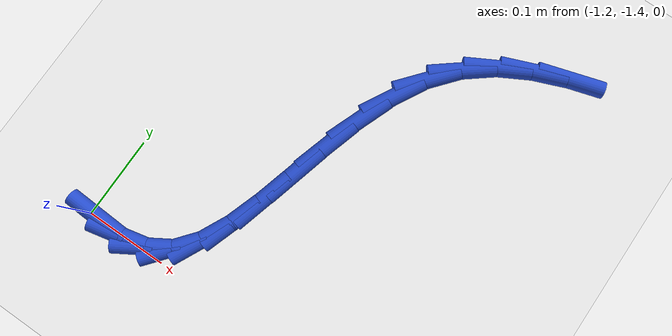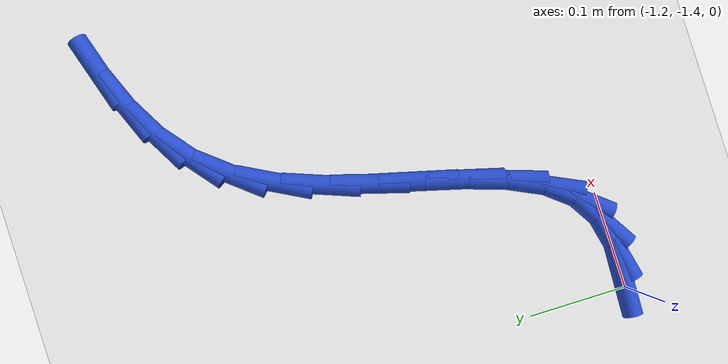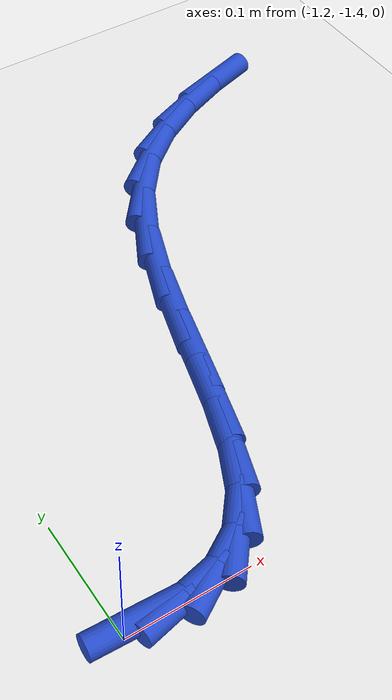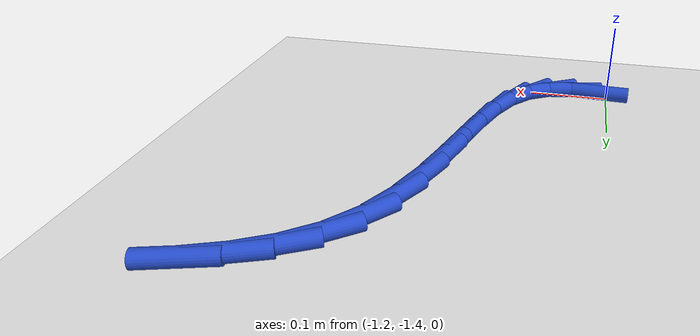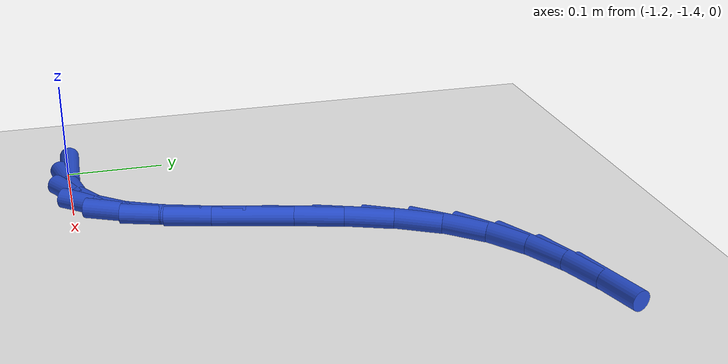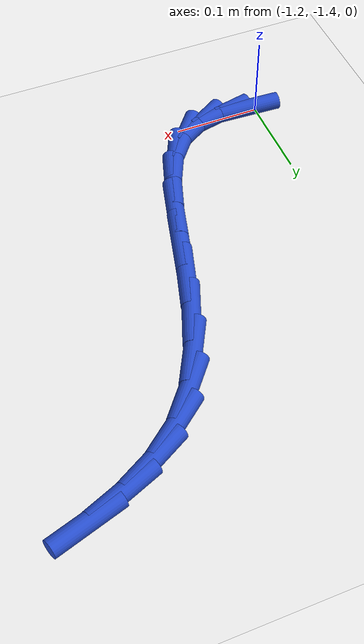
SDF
<sdf version="1.6">
 <world name="default">
  <model name="ground_plane">
   <static>1</static>
   <link name="link">
    <collision name="collision">
     <geometry><plane><normal>0 0 1</normal><size>100 100</size></plane></geometry>
     <surface><friction><ode><mu>100</mu><mu2>50</mu2></ode></friction></surface>
    </collision>
    <visual name="visual">
     <cast_shadows>0</cast_shadows>
     <geometry><plane><normal>0 0 1</normal><size>100 100</size></plane></geometry>
     <material>
      <script><uri>file://media/materials/scripts/gazebo.material</uri><name>Gazebo/WhiteGlow</name></script>
     </material>
    </visual>
   </link>
  </model>
  <model name="line">
   <link name="link_144">
    <pose>-1.1872415574179047 -1.3979767738019815 0.01 0 1.57 -0.04588380426478071</pose>
    <collision name="collision">
     <geometry><cylinder><radius>0.01</radius><length>0.08</length></cylinder></geometry>
    </collision>
    <visual name="visual">
     <material>
      <script><name>Gazebo/Blue</name><uri>file://media/materials/scripts/gazebo.material</uri></script>
     </material>
     <geometry><cylinder><radius>0.01</radius><length>0.08</length></cylinder></geometry>
    </visual>
   </link>
   <link name="link_145">
    <pose>-1.1531022985928154 -1.3995443130851797 0.01 0 1.57 0.2148509591762477</pose>
    <collision name="collision">
     <geometry><cylinder><radius>0.01</radius><length>0.08</length></cylinder></geometry>
    </collision>
    <visual name="visual">
     <material>
      <script><name>Gazebo/Blue</name><uri>file://media/materials/scripts/gazebo.material</uri></script>
     </material>
     <geometry><cylinder><radius>0.01</radius><length>0.08</length></cylinder></geometry>
    </visual>
   </link>
   <link name="link_146">
    <pose>-1.122876565275637 -1.3929484816718263 0.01 0 1.57 0.5464078041824116</pose>
    <collision name="collision">
     <geometry><cylinder><radius>0.01</radius><length>0.08</length></cylinder></geometry>
    </collision>
    <visual name="visual">
     <material>
      <script><name>Gazebo/Blue</name><uri>file://media/materials/scripts/gazebo.material</uri></script>
     </material>
     <geometry><cylinder><radius>0.01</radius><length>0.08</length></cylinder></geometry>
    </visual>
   </link>
   <link name="link_147">
    <pose>-1.0971259649567702 -1.377287647443103 0.01 0 1.57 0.8862014245659278</pose>
    <collision name="collision">
     <geometry><cylinder><radius>0.01</radius><length>0.08</length></cylinder></geometry>
    </collision>
    <visual name="visual">
     <material>
      <script><name>Gazebo/Blue</name><uri>file://media/materials/scripts/gazebo.material</uri></script>
     </material>
     <geometry><cylinder><radius>0.01</radius><length>0.08</length></cylinder></geometry>
    </visual>
   </link>
   <link name="link_148">
    <pose>-1.0763221630388118 -1.3518018319326048 0.01 0 1.57 1.1217602869685055</pose>
    <collision name="collision">
     <geometry><cylinder><radius>0.01</radius><length>0.08</length></cylinder></geometry>
    </collision>
    <visual name="visual">
     <material>
      <script><name>Gazebo/Blue</name><uri>file://media/materials/scripts/gazebo.material</uri></script>
     </material>
     <geometry><cylinder><radius>0.01</radius><length>0.08</length></cylinder></geometry>
    </visual>
   </link>
   <link name="link_149">
    <pose>-1.0598020509263657 -1.3175182609228449 0.01 0 1.57 1.2475887479076877</pose>
    <collision name="collision">
     <geometry><cylinder><radius>0.01</radius><length>0.08</length></cylinder></geometry>
    </collision>
    <visual name="visual">
     <material>
      <script><name>Gazebo/Blue</name><uri>file://media/materials/scripts/gazebo.material</uri></script>
     </material>
     <geometry><cylinder><radius>0.01</radius><length>0.08</length></cylinder></geometry>
    </visual>
   </link>
   <link name="link_150">
    <pose>-1.0461256996784647 -1.2766876078825844 0.01 0 1.57 1.3048178855172592</pose>
    <collision name="collision">
     <geometry><cylinder><radius>0.01</radius><length>0.08</length></cylinder></geometry>
    </collision>
    <visual name="visual">
     <material>
      <script><name>Gazebo/Blue</name><uri>file://media/materials/scripts/gazebo.material</uri></script>
     </material>
     <geometry><cylinder><radius>0.01</radius><length>0.08</length></cylinder></geometry>
    </visual>
   </link>
   <link name="link_151">
    <pose>-1.0338380679747203 -1.2315843474152228 0.01 0 1.57 1.314289851538005</pose>
    <collision name="collision">
     <geometry><cylinder><radius>0.01</radius><length>0.08</length></cylinder></geometry>
    </collision>
    <visual name="visual">
     <material>
      <script><name>Gazebo/Blue</name><uri>file://media/materials/scripts/gazebo.material</uri></script>
     </material>
     <geometry><cylinder><radius>0.01</radius><length>0.08</length></cylinder></geometry>
    </visual>
   </link>
   <link name="link_152">
    <pose>-1.0214841144947437 -1.1844829541241608 0.01 0 1.57 1.2827167861028566</pose>
    <collision name="collision">
     <geometry><cylinder><radius>0.01</radius><length>0.08</length></cylinder></geometry>
    </collision>
    <visual name="visual">
     <material>
      <script><name>Gazebo/Blue</name><uri>file://media/materials/scripts/gazebo.material</uri></script>
     </material>
     <geometry><cylinder><radius>0.01</radius><length>0.08</length></cylinder></geometry>
    </visual>
   </link>
   <link name="link_153">
    <pose>-1.0076087979181458 -1.1376579026127969 0.01 0 1.57 1.2071064441551407</pose>
    <collision name="collision">
     <geometry><cylinder><radius>0.01</radius><length>0.08</length></cylinder></geometry>
    </collision>
    <visual name="visual">
     <material>
      <script><name>Gazebo/Blue</name><uri>file://media/materials/scripts/gazebo.material</uri></script>
     </material>
     <geometry><cylinder><radius>0.01</radius><length>0.08</length></cylinder></geometry>
    </visual>
   </link>
   <link name="link_154">
    <pose>-0.9907570769245384 -1.0933836674845312 0.01 0 1.57 1.0760412023821324</pose>
    <collision name="collision">
     <geometry><cylinder><radius>0.01</radius><length>0.08</length></cylinder></geometry>
    </collision>
    <visual name="visual">
     <material>
      <script><name>Gazebo/Blue</name><uri>file://media/materials/scripts/gazebo.material</uri></script>
     </material>
     <geometry><cylinder><radius>0.01</radius><length>0.08</length></cylinder></geometry>
    </visual>
   </link>
   <link name="link_155">
    <pose>-0.969473910193533 -1.0539347233427638 0.01 0 1.57 0.8795466941416823</pose>
    <collision name="collision">
     <geometry><cylinder><radius>0.01</radius><length>0.08</length></cylinder></geometry>
    </collision>
    <visual name="visual">
     <material>
      <script><name>Gazebo/Blue</name><uri>file://media/materials/scripts/gazebo.material</uri></script>
     </material>
     <geometry><cylinder><radius>0.01</radius><length>0.08</length></cylinder></geometry>
    </visual>
   </link>
   <link name="link_156">
    <pose>-0.9424863221404427 -1.02131892479432 0.01 0 1.57 0.6735459623128434</pose>
    <collision name="collision">
     <geometry><cylinder><radius>0.01</radius><length>0.08</length></cylinder></geometry>
    </collision>
    <visual name="visual">
     <material>
      <script><name>Gazebo/Blue</name><uri>file://media/materials/scripts/gazebo.material</uri></script>
     </material>
     <geometry><cylinder><radius>0.01</radius><length>0.08</length></cylinder></geometry>
    </visual>
   </link>
   <link name="link_157">
    <pose>-0.9099934924146512 -0.9953882786037482 0.01 0 1.57 0.5036714964694431</pose>
    <collision name="collision">
     <geometry><cylinder><radius>0.01</radius><length>0.08</length></cylinder></geometry>
    </collision>
    <visual name="visual">
     <material>
      <script><name>Gazebo/Blue</name><uri>file://media/materials/scripts/gazebo.material</uri></script>
     </material>
     <geometry><cylinder><radius>0.01</radius><length>0.08</length></cylinder></geometry>
    </visual>
   </link>
   <link name="link_158">
    <pose>-0.8729074283831906 -0.9749509151416945 0.01 0 1.57 0.3770700580744175</pose>
    <collision name="collision">
     <geometry><cylinder><radius>0.01</radius><length>0.08</length></cylinder></geometry>
    </collision>
    <visual name="visual">
     <material>
      <script><name>Gazebo/Blue</name><uri>file://media/materials/scripts/gazebo.material</uri></script>
     </material>
     <geometry><cylinder><radius>0.01</radius><length>0.08</length></cylinder></geometry>
    </visual>
   </link>
   <link name="link_159">
    <pose>-0.832144805525395 -0.958808128719944 0.01 0 1.57 0.29124942726283787</pose>
    <collision name="collision">
     <geometry><cylinder><radius>0.01</radius><length>0.08</length></cylinder></geometry>
    </collision>
    <visual name="visual">
     <material>
      <script><name>Gazebo/Blue</name><uri>file://media/materials/scripts/gazebo.material</uri></script>
     </material>
     <geometry><cylinder><radius>0.01</radius><length>0.08</length></cylinder></geometry>
    </visual>
   </link>
  </model>
 </world>
</sdf>
